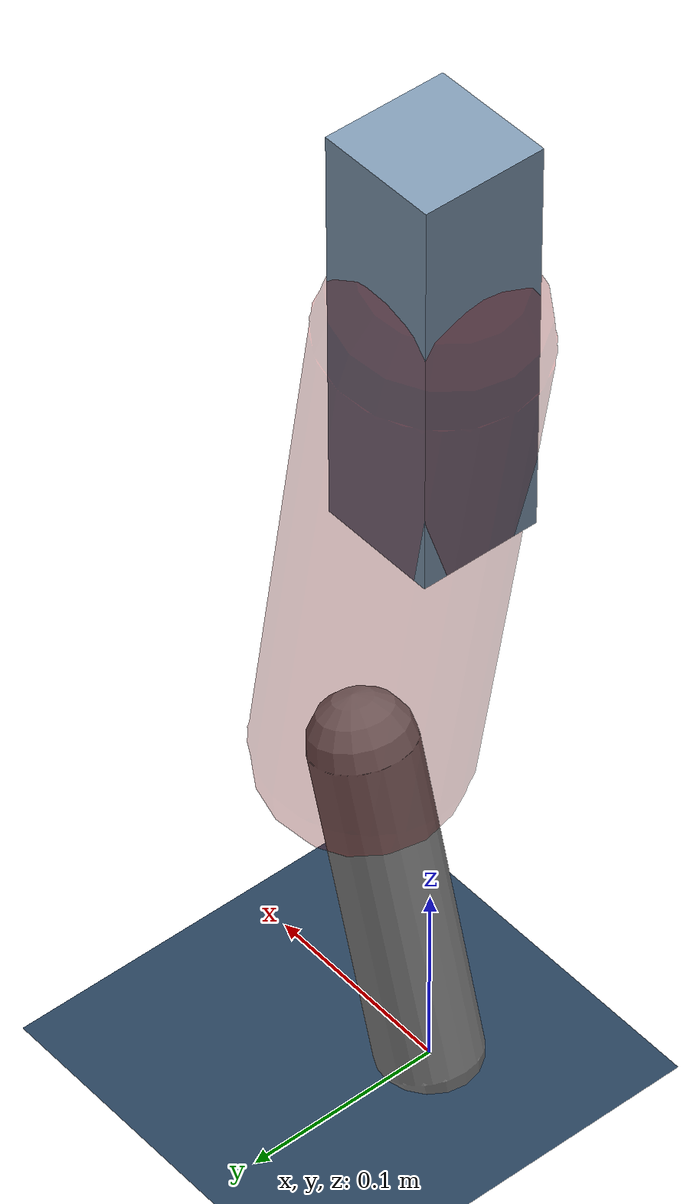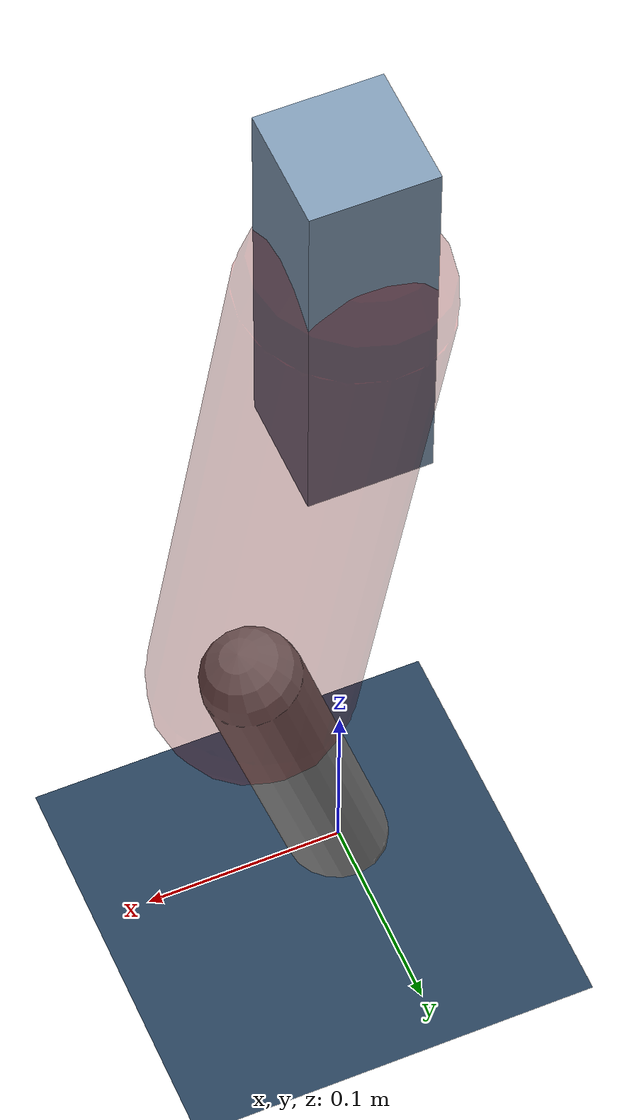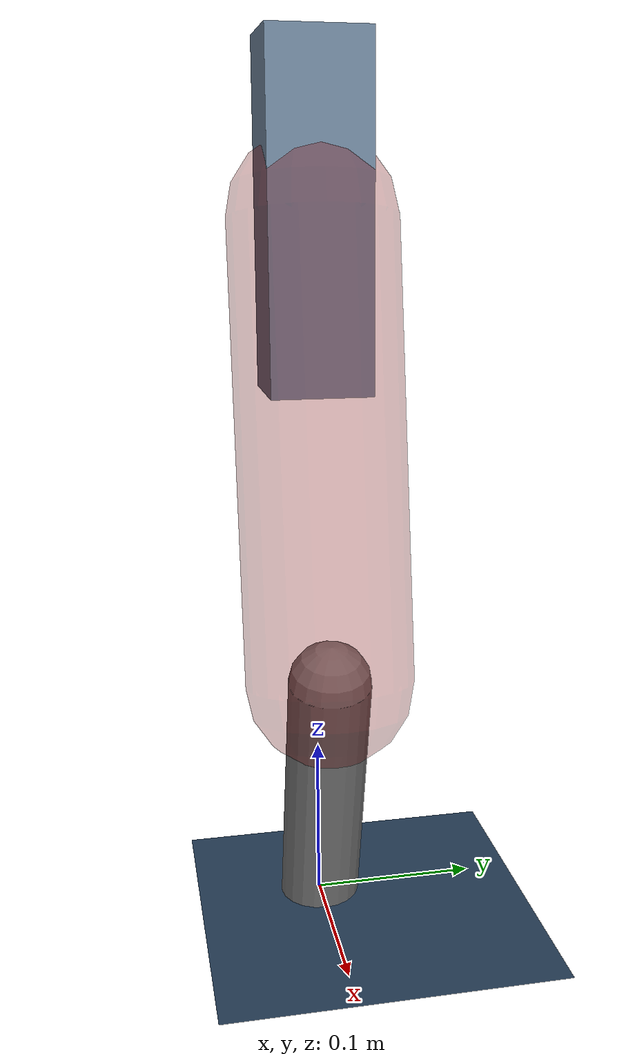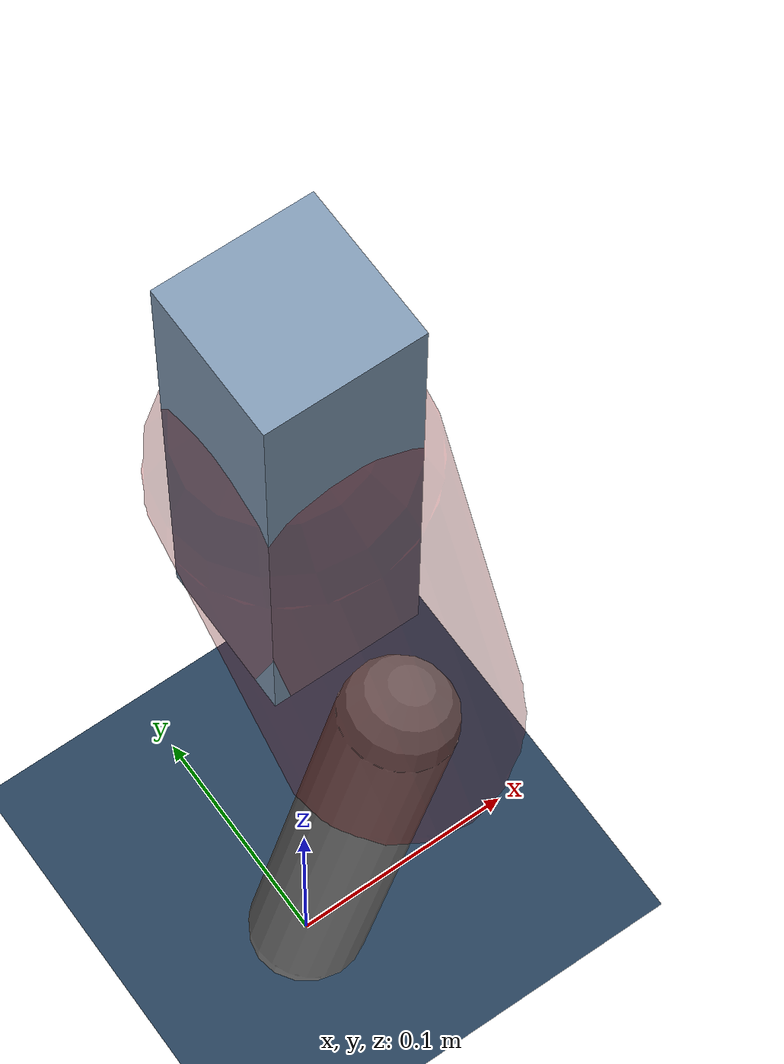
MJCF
<mujoco model="Hopper2D">
	<compiler inertiafromgeom="true" angle="radian" />
	<option timestep="0.001" integrator="implicit" cone="elliptic" solver="Newton" tolerance="1e-10" />

	<default>
		<geom contype="1" conaffinity="1" condim="3" friction="2 0.005 0.0001" solref="0.005 1" />
		<joint limited="true" damping="0.1" />
	</default>

	<asset>
		<texture name="skybox" type="skybox" builtin="gradient" rgb1=".4 .6 .8" rgb2="0 0 0" width="800" height="800" />
		<texture name="grid" type="2d" builtin="checker" rgb1=".1 .2 .3" rgb2=".2 .3 .4" width="300" height="300" mark="edge" markrgb=".2 .3 .4" />
		<material name="ground" texture="grid" texrepeat="1 1" texuniform="true" reflectance="0.1" />
		<material name="leg" rgba="0.5 0.6 0.7 1" />
	</asset>

	<worldbody>

		<geom name="floor" type="plane" size="5 5 0.25" material="ground" />

		<light directional="false" diffuse="0.8 0.8 0.8" specular="0.3 0.3 0.3" pos="0 0 2" dir="0 0 -1" />
		<light mode="targetbodycom" target="base" directional="false" diffuse="0.8 0.8 0.8" specular="0.3 0.3 0.3" pos="0 0 2" dir="0 0 -1" />

		<camera name="fixed" pos="0 -2 1" xyaxes="1 0 0 0 0 1" />
		<camera name="tracking" mode="trackcom" pos="0 -3 1" />

		<body name="root" pos="0 0 0.42741800252574247">
			<joint name="slide_x" type="slide" axis="1 0 0" range="-100 100" />
			<joint name="slide_z" type="slide" axis="0 0 1" range="0 10" />

			<body name="base" pos="0 0 0">
				<geom name="torso" type="box" size="0.03 0.03 0.1" mass="3.258" material="leg" />

				<body name="link1" pos="0 0 0" euler="0 1.4032300985427835 0">
					<joint type="hinge" axis="0 -1 0" pos="0 0 0" name="hinge1" limited="true" range="-3.14 3.14" stiffness="0" damping="0.1" />
					<geom name="thigh" type="capsule" fromto="0 0 0 0.2704879877080088 0 0" size="0.05" rgba="0.5 0 0 0.3" mass="0.9099687680408228" />

					<body name="link2" pos="0.2704879877080088 0 0" euler="0 0.4412189456715898 0">
						<joint type="hinge" axis="0 -1 0" pos="0 0 0" name="hinge2" limited="true" range="-3.14 3.14" stiffness="0" damping="0.1" />
						<geom name="shank" type="capsule" fromto="0 0 0 0.16693001481773367 0 0" size="0.025" mass="0.3726370133359603" />

					</body>
				</body>
			</body>
		</body>
	</worldbody>

	<actuator>
		<motor name="torque1" joint="hinge1" ctrlrange="-139.757958660142 139.757958660142" ctrllimited="true" gear="1" />
		<motor name="torque2" joint="hinge2" ctrlrange="-98.8851731698864 98.8851731698864" ctrllimited="true" gear="1" />
	</actuator>
</mujoco>
